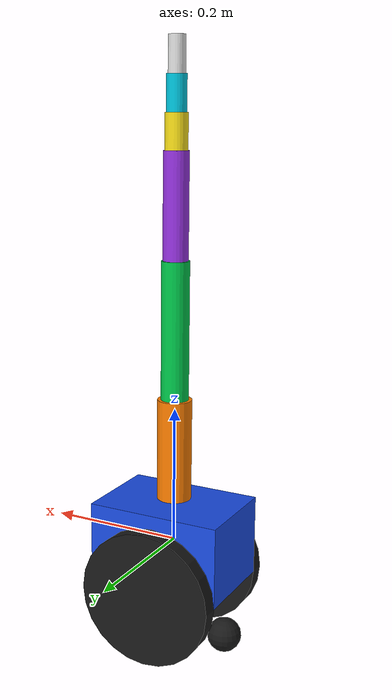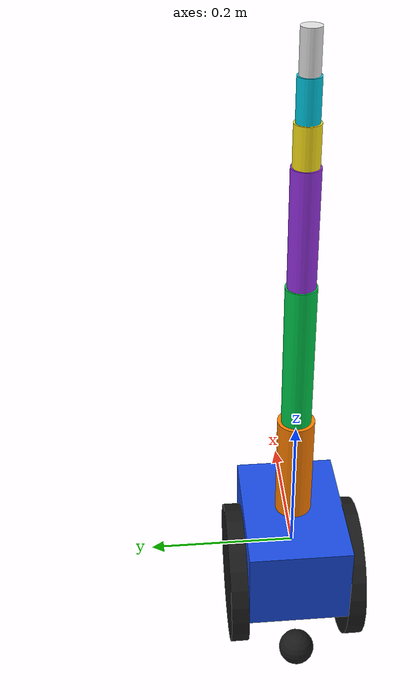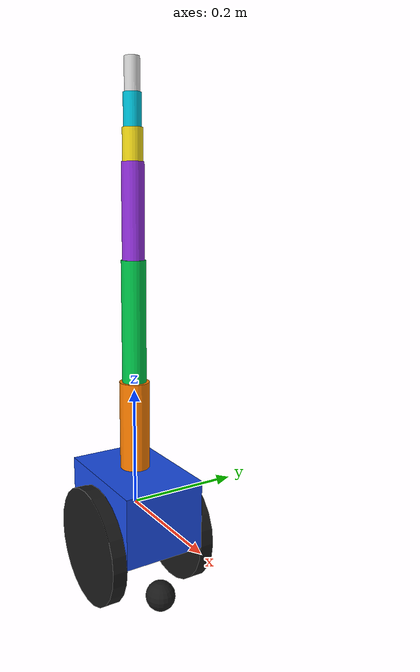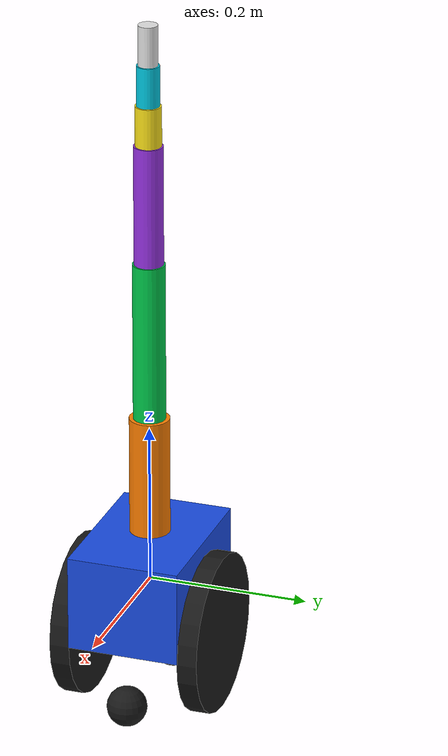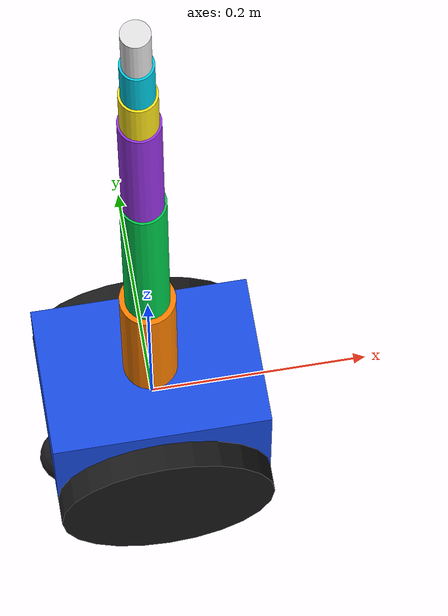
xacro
<?xml version="1.0"?>
<robot xmlns:xacro="http://www.ros.org/wiki/xacro"
       name="my_best_model">

    <link name="base_link">
        <visual>
            <geometry>
                <box size="0.20 0.14 0.12"/>
            </geometry>
            <material name="blue">
                <color rgba="0.1 0.3 0.9 1.0"/>
            </material>
        </visual>
<collision>
    <geometry>
        <box size="0.20 0.14 0.12"/>
    </geometry>
</collision>

<inertial>
    <mass value="2.0"/>
    <inertia ixx="0.0056667" ixy="0" ixz="0"
             iyy="0.0090667" iyz="0"
             izz="0.0093333"/>
</inertial>

    </link>

<link name="arm_link_1">
    <visual>
        <geometry>
            <cylinder radius="0.025" length="0.15"/>
        </geometry>
        <material name="orange">
            <color rgba="1.0 0.5 0.0 1.0"/>
        </material>
    </visual>
<collision>
    <geometry>
        <cylinder radius="0.025" length="0.15"/>
    </geometry>
</collision>

<inertial>
    <mass value="0.1"/>
    <inertia ixx="0.000203125" ixy="0" ixz="0"
             iyy="0.000203125" iyz="0"
             izz="0.00003125"/>
</inertial>
</link>

<joint name="joint_1" type="prismatic">
    <parent link="base_link"/>
    <child link="arm_link_1"/>

    <origin xyz="0 0 0.14" rpy="0 0 0"/>
    <axis xyz="0 0 1"/>

    <limit lower="0.0"
           upper="0.12"
           effort="100"
           velocity="0.1"/>
</joint>

<link name="arm_link_2">
    <visual>
        <origin xyz="0 0 0.10" rpy="0 0 0"/>
        <geometry>
            <cylinder radius="0.02" length="0.20"/>
        </geometry>
        <material name="green">
            <color rgba="0.0 0.8 0.3 1.0"/>
        </material>
    </visual>
 <collision>
    <origin xyz="0 0 0.10" rpy="0 0 0"/>
    <geometry>
        <cylinder radius="0.02" length="0.20"/>
    </geometry>
</collision>
<inertial>
    <origin xyz="0 0 0.10" rpy="0 0 0"/>
    <mass value="0.1"/>
    <inertia ixx="0.000343333" ixy="0" ixz="0"
             iyy="0.000343333" iyz="0"
             izz="0.00002"/>
</inertial>
</link>

<joint name="joint_2" type="revolute">
    <parent link="arm_link_1"/>
    <child link="arm_link_2"/>

    <origin xyz="0 0 0.075" rpy="0 0 0"/>
    <axis xyz="0 1 0"/>

    <limit lower="-1.57"
           upper="1.57"
           effort="100"
           velocity="1.0"/>
</joint>

<link name="arm_link_3">
    <visual>
        <origin xyz="0 0 0.075" rpy="0 0 0"/>
        <geometry>
            <cylinder radius="0.018" length="0.15"/>
        </geometry>
        <material name="purple">
            <color rgba="0.6 0.2 0.9 1.0"/>
        </material>
    </visual>
 <collision>
    <origin xyz="0 0 0.075" rpy="0 0 0"/>
    <geometry>
        <cylinder radius="0.018" length="0.15"/>
    </geometry>
</collision>
<inertial>
    <origin xyz="0 0 0.075" rpy="0 0 0"/>
    <mass value="0.08"/>
    <inertia ixx="0.00015648" ixy="0" ixz="0"
             iyy="0.00015648" iyz="0"
             izz="0.00001296"/>
</inertial>
</link>

<joint name="joint_3" type="revolute">
    <parent link="arm_link_2"/>
    <child link="arm_link_3"/>

    <origin xyz="0 0 0.20" rpy="0 0 0"/>
    <axis xyz="0 1 0"/>

    <limit lower="-1.57"
           upper="1.57"
           effort="100"
           velocity="1.0"/>
</joint>

<link name="left_wheel">
    <visual>
        <geometry>
            <cylinder radius="0.1" length="0.025"/>
        </geometry>
        <material name="black">
            <color rgba="0.1 0.1 0.1 1.0"/>
        </material>
    </visual>
<collision>
    <geometry>
        <cylinder radius="0.1" length="0.025"/>
    </geometry>
</collision>

<inertial>
    <mass value="0.2"/>
    <inertia ixx="0.000515625" ixy="0" ixz="0"
             iyy="0.000515625" iyz="0"
             izz="0.001"/>
</inertial>
</link>

<joint name="left_wheel_joint" type="continuous">
    <parent link="base_link"/>
    <child link="left_wheel"/>

    <origin xyz="0 0.082 -0.06" rpy="-1.5708 0 0"/>
    <axis xyz="0 0 1"/>

    <limit effort="10" velocity="10"/>
</joint>

<link name="right_wheel">
    <visual>
        <geometry>
            <cylinder radius="0.1" length="0.025"/>
        </geometry>
        <material name="black">
            <color rgba="0.1 0.1 0.1 1.0"/>
        </material>
    </visual>
<collision>
    <geometry>
        <cylinder radius="0.1" length="0.025"/>
    </geometry>
</collision>

<inertial>
    <mass value="0.2"/>
    <inertia ixx="0.000515625" ixy="0" ixz="0"
             iyy="0.000515625" iyz="0"
             izz="0.001"/>
</inertial>
</link>

<joint name="right_wheel_joint" type="continuous">
    <parent link="base_link"/>
    <child link="right_wheel"/>

    <origin xyz="0 -0.082 -0.06" rpy="-1.5708 0 0"/>
    <axis xyz="0 0 1"/>

    <limit effort="10" velocity="10"/>
</joint>

<link name="arm_link_4">
    <visual>
        <origin xyz="0 0 0.025" rpy="0 0 0"/>
        <geometry>
            <cylinder radius="0.016" length="0.05"/>
        </geometry>
        <material name="yellow">
            <color rgba="1.0 0.9 0.1 1.0"/>
        </material>
    </visual>
 <collision>
    <origin xyz="0 0 0.025" rpy="0 0 0"/>
    <geometry>
        <cylinder radius="0.016" length="0.05"/>
    </geometry>
</collision>
<inertial>
    <origin xyz="0 0 0.025" rpy="0 0 0"/>
    <mass value="0.04"/>
    <inertia ixx="0.0000108933" ixy="0" ixz="0"
             iyy="0.0000108933" iyz="0"
             izz="0.00000512"/>
</inertial>
</link>

<joint name="joint_4_fixed" type="fixed">
    <parent link="arm_link_3"/>
    <child link="arm_link_4"/>
    <origin xyz="0 0 0.15" rpy="0 0 0"/>
</joint>

<link name="arm_link_5">
    <visual>
        <origin xyz="0 0 0.025" rpy="0 0 0"/>
        <geometry>
            <cylinder radius="0.014" length="0.05"/>
        </geometry>
        <material name="cyan">
            <color rgba="0.0 0.8 0.9 1.0"/>
        </material>
    </visual>
 <collision>
    <origin xyz="0 0 0.025" rpy="0 0 0"/>
    <geometry>
        <cylinder radius="0.014" length="0.05"/>
    </geometry>
</collision>
<inertial>
    <origin xyz="0 0 0.025" rpy="0 0 0"/>
    <mass value="0.03"/>
    <inertia ixx="0.00000773" ixy="0" ixz="0"
             iyy="0.00000773" iyz="0"
             izz="0.00000294"/>
</inertial>
</link>

<joint name="joint_5_fixed" type="fixed">
    <parent link="arm_link_4"/>
    <child link="arm_link_5"/>
    <origin xyz="0 0 0.05" rpy="0 0 0"/>
</joint>

<link name="arm_link_6">
    <visual>
        <origin xyz="0 0 0.025" rpy="0 0 0"/>
        <geometry>
            <cylinder radius="0.012" length="0.05"/>
        </geometry>
        <material name="white">
            <color rgba="0.9 0.9 0.9 1.0"/>
        </material>
    </visual>
 <collision>
    <origin xyz="0 0 0.025" rpy="0 0 0"/>
    <geometry>
        <cylinder radius="0.012" length="0.05"/>
    </geometry>
</collision>
<inertial>
    <origin xyz="0 0 0.025" rpy="0 0 0"/>
    <mass value="0.02"/>
    <inertia ixx="0.0000048867" ixy="0" ixz="0"
             iyy="0.0000048867" iyz="0"
             izz="0.00000144"/>
</inertial>
</link>

<joint name="joint_6_fixed" type="fixed">
    <parent link="arm_link_5"/>
    <child link="arm_link_6"/>
    <origin xyz="0 0 0.05" rpy="0 0 0"/>
</joint>
<ros2_control name="GazeboSimSystem" type="system">
    <hardware>
        <plugin>gz_ros2_control/GazeboSimSystem</plugin>
    </hardware>

    <joint name="left_wheel_joint">
        <command_interface name="velocity"/>
        <state_interface name="position"/>
        <state_interface name="velocity"/>
    </joint>

    <joint name="right_wheel_joint">
        <command_interface name="velocity"/>
        <state_interface name="position"/>
        <state_interface name="velocity"/>
    </joint>
</ros2_control>
<gazebo>
    <plugin
        filename="libgz_ros2_control-system.so"
        name="gz_ros2_control::GazeboSimROS2ControlPlugin">

        <parameters>/home/user/ROS_2026/student_408082/lab4/my_best_robot_simulation_control/config/controllers.yaml</parameters>

        <robot_param>robot_description</robot_param>
        <robot_param_node>robot_state_publisher</robot_param_node>

    </plugin>
</gazebo>
<link name="front_support">
    <visual>
        <geometry>
            <sphere radius="0.025"/>
        </geometry>
        <material name="black">
            <color rgba="0.1 0.1 0.1 1.0"/>
        </material>
    </visual>

    <collision>
        <geometry>
            <sphere radius="0.025"/>
        </geometry>
    </collision>

    <inertial>
        <mass value="0.05"/>
        <inertia
            ixx="0.0000125"
            ixy="0"
            ixz="0"
            iyy="0.0000125"
            iyz="0"
            izz="0.0000125"/>
    </inertial>
</link>

<joint name="front_support_joint" type="fixed">
    <parent link="base_link"/>
    <child link="front_support"/>
    <origin xyz="0.085 0 -0.135" rpy="0 0 0"/>
</joint>
<link name="rear_support">
    <visual>
        <geometry>
            <sphere radius="0.025"/>
        </geometry>
        <material name="black">
            <color rgba="0.1 0.1 0.1 1.0"/>
        </material>
    </visual>

    <collision>
        <geometry>
            <sphere radius="0.025"/>
        </geometry>
    </collision>

    <inertial>
        <mass value="0.05"/>
        <inertia
            ixx="0.0000125"
            ixy="0"
            ixz="0"
            iyy="0.0000125"
            iyz="0"
            izz="0.0000125"/>
    </inertial>
</link>

<joint name="rear_support_joint" type="fixed">
    <parent link="base_link"/>
    <child link="rear_support"/>
    <origin xyz="-0.085 0 -0.135" rpy="0 0 0"/>
</joint>
</robot>
